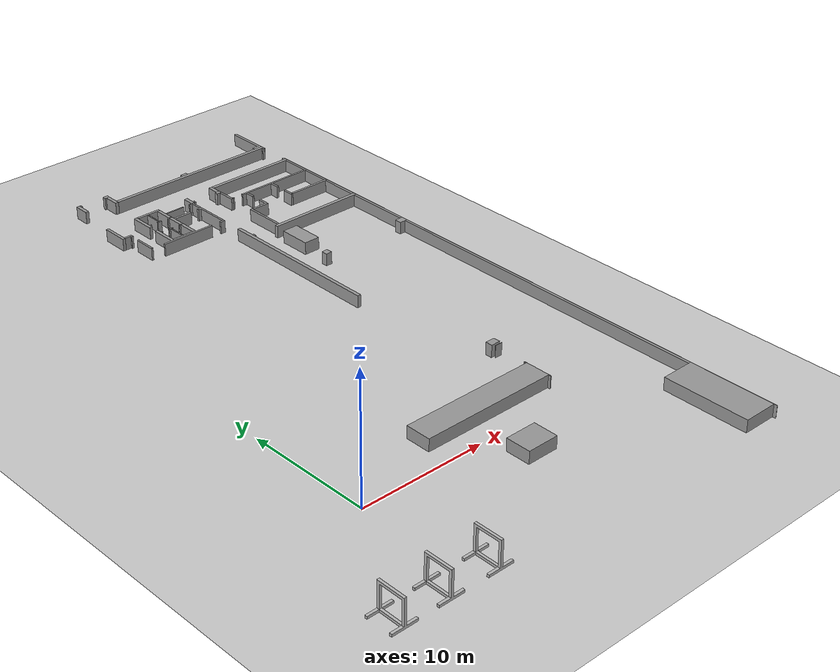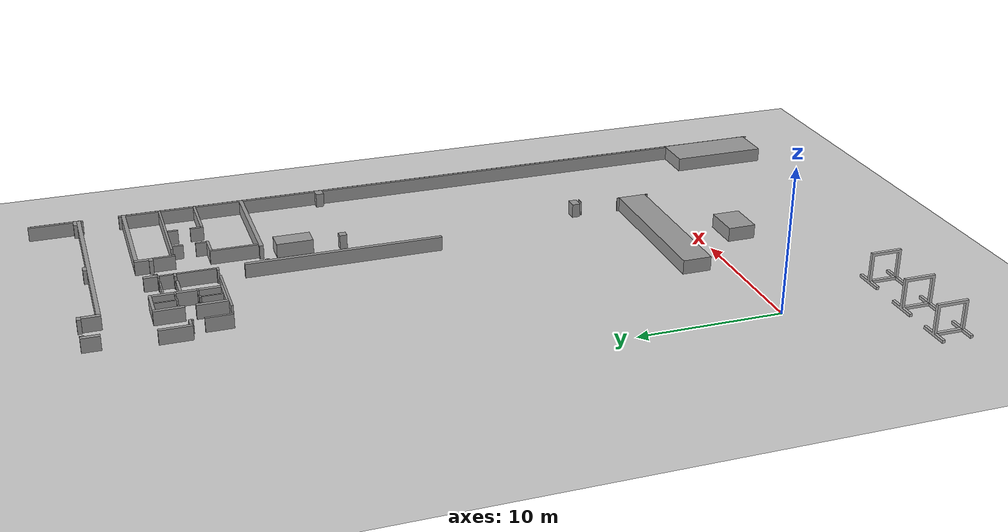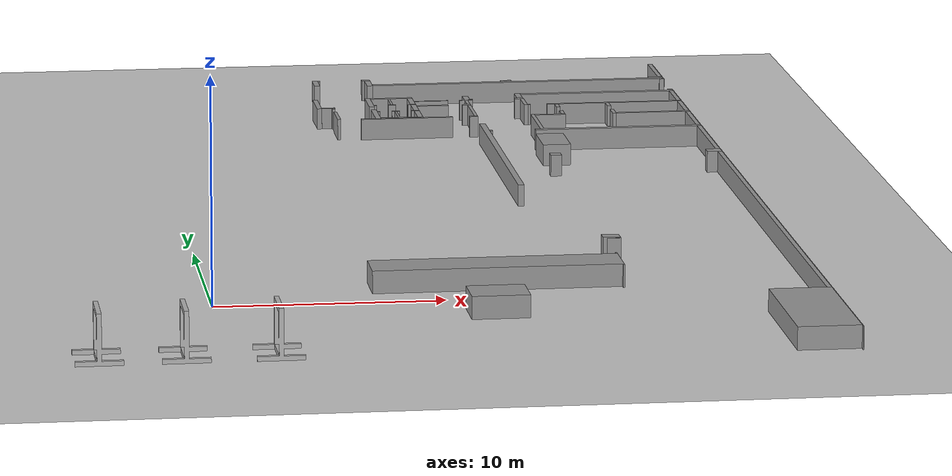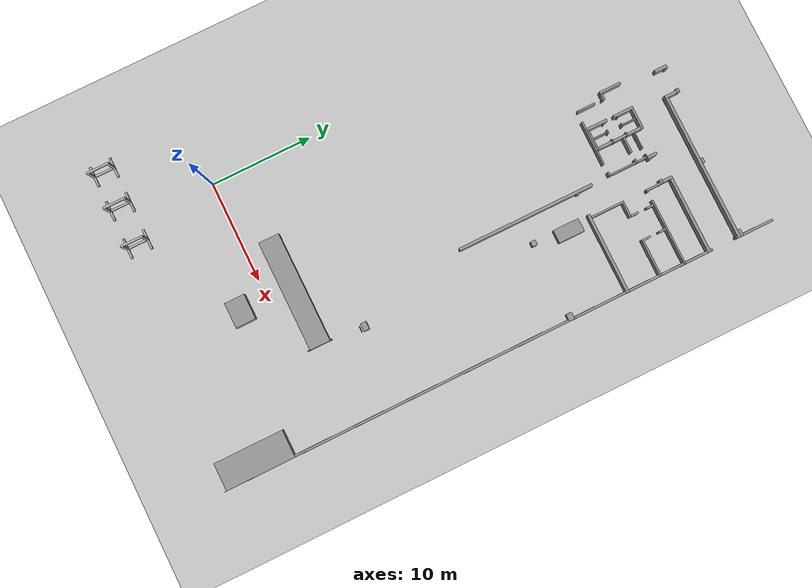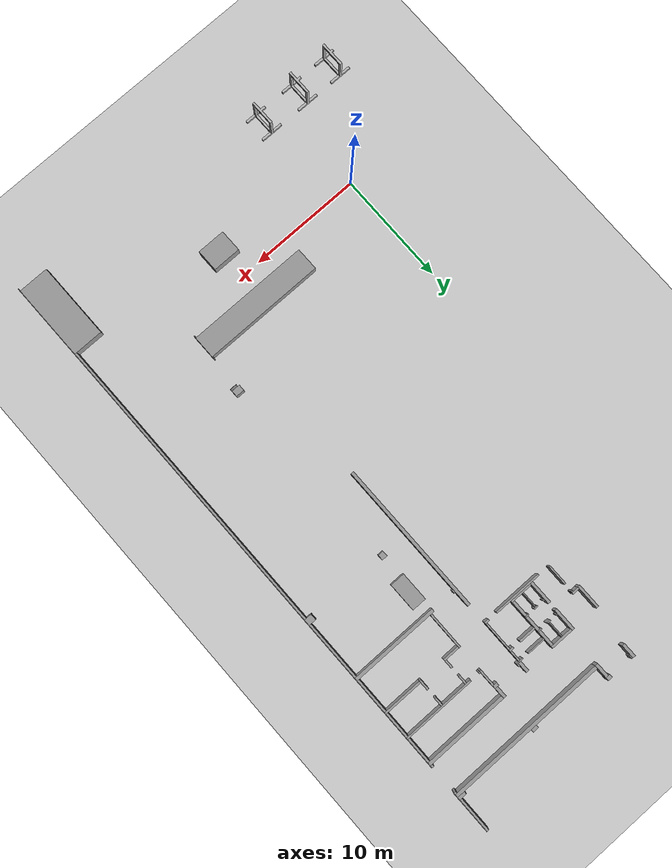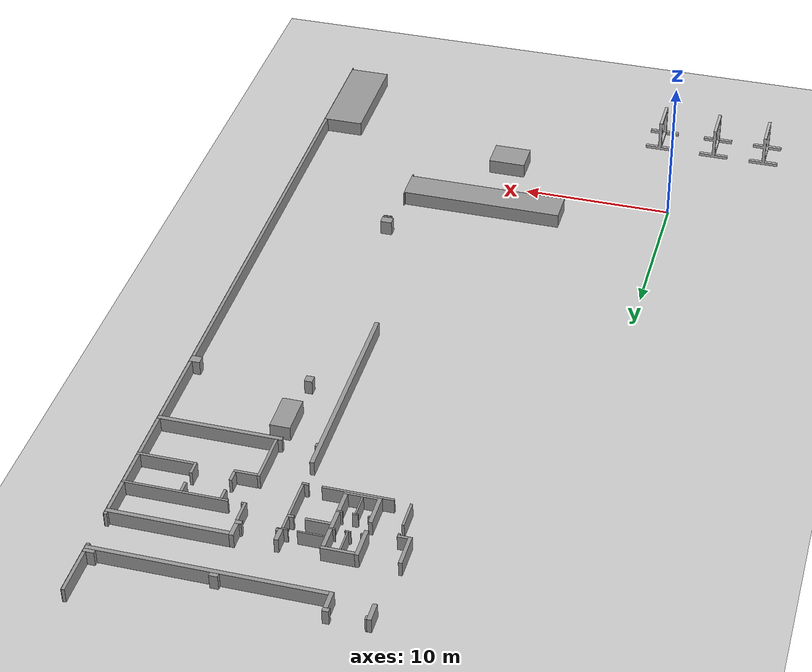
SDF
<sdf version="1.4">
 <world name="default">
  <model name="ground_plane">
   <static>1</static>
   <link name="link">
    <collision name="collision">
     <geometry><plane><normal>0 0 1</normal><size>100 100</size></plane></geometry>
     <surface><friction><ode><mu>100</mu><mu2>50</mu2></ode></friction></surface>
    </collision>
    <visual name="visual">
     <cast_shadows>0</cast_shadows>
     <geometry><plane><normal>0 0 1</normal><size>100 100</size></plane></geometry>
     <material>
      <script><uri>file://media/materials/scripts/gazebo.material</uri><name>Gazebo/Grey</name></script>
     </material>
    </visual>
    <velocity_decay><linear>0</linear><angular>0</angular></velocity_decay>
   </link>
  </model>
  <model name="walls">
   <static>1</static>
   <link name="Wall_78">
    <collision name="Wall_78_Collision">
     <geometry><box><size>2.01702 10.9021 1</size></box></geometry>
     <pose>25.3149 -19.4426 0.5 0 -0 0</pose>
    </collision>
    <visual name="Wall_78_Visual">
     <geometry><box><size>2.01702 10.9021 1</size></box></geometry>
     <material>
      <script><uri>file://media/materials/scripts/gazebo.material</uri><name>Gazebo/Grey</name></script>
     </material>
     <pose>25.3149 -19.4426 0.5 0 -0 0</pose>
    </visual>
    <velocity_decay><linear>0</linear><angular>0</angular></velocity_decay>
   </link>
   <link name="Wall_79">
    <collision name="Wall_79_Collision">
     <geometry><box><size>2.14468 0.22979 1</size></box></geometry>
     <pose>59.7447 -15.2808 0.5 0 -0 0</pose>
    </collision>
    <visual name="Wall_79_Visual">
     <geometry><box><size>2.14468 0.22979 1</size></box></geometry>
     <material>
      <script><uri>file://media/materials/scripts/gazebo.material</uri><name>Gazebo/Grey</name></script>
     </material>
     <pose>59.7447 -15.2808 0.5 0 -0 0</pose>
    </visual>
    <velocity_decay><linear>0</linear><angular>0</angular></velocity_decay>
   </link>
   <link name="Wall_80">
    <collision name="Wall_80_Collision">
     <geometry><box><size>0.17872 0.6383 1</size></box></geometry>
     <pose>58.7617 -15.7149 0.5 0 -0 0</pose>
    </collision>
    <visual name="Wall_80_Visual">
     <geometry><box><size>0.17872 0.6383 1</size></box></geometry>
     <material>
      <script><uri>file://media/materials/scripts/gazebo.material</uri><name>Gazebo/Grey</name></script>
     </material>
     <pose>58.7617 -15.7149 0.5 0 -0 0</pose>
    </visual>
    <velocity_decay><linear>0</linear><angular>0</angular></velocity_decay>
   </link>
   <link name="Wall_81">
    <collision name="Wall_81_Collision">
     <geometry><box><size>1.22553 0.28085 1</size></box></geometry>
     <pose>64.8 -15.7404 0.5 0 -0 0</pose>
    </collision>
    <visual name="Wall_81_Visual">
     <geometry><box><size>1.22553 0.28085 1</size></box></geometry>
     <material>
      <script><uri>file://media/materials/scripts/gazebo.material</uri><name>Gazebo/Grey</name></script>
     </material>
     <pose>64.8 -15.7404 0.5 0 -0 0</pose>
    </visual>
    <velocity_decay><linear>0</linear><angular>0</angular></velocity_decay>
   </link>
   <link name="Wall_82">
    <collision name="Wall_82_Collision">
     <geometry><box><size>1.81277 0.15319 1</size></box></geometry>
     <pose>56.9489 -15.9574 0.5 0 -0 0</pose>
    </collision>
    <visual name="Wall_82_Visual">
     <geometry><box><size>1.81277 0.15319 1</size></box></geometry>
     <material>
      <script><uri>file://media/materials/scripts/gazebo.material</uri><name>Gazebo/Grey</name></script>
     </material>
     <pose>56.9489 -15.9574 0.5 0 -0 0</pose>
    </visual>
    <velocity_decay><linear>0</linear><angular>0</angular></velocity_decay>
   </link>
   <link name="Wall_83">
    <collision name="Wall_83_Collision">
     <geometry><box><size>0.12766 0.15319 1</size></box></geometry>
     <pose>58.6085 -15.9574 0.5 0 -0 0</pose>
    </collision>
    <visual name="Wall_83_Visual">
     <geometry><box><size>0.12766 0.15319 1</size></box></geometry>
     <material>
      <script><uri>file://media/materials/scripts/gazebo.material</uri><name>Gazebo/Grey</name></script>
     </material>
     <pose>58.6085 -15.9574 0.5 0 -0 0</pose>
    </visual>
    <velocity_decay><linear>0</linear><angular>0</angular></velocity_decay>
   </link>
   <link name="Wall_84">
    <collision name="Wall_84_Collision">
     <geometry><box><size>0.28085 0.10213 1</size></box></geometry>
     <pose>65.2723 -15.9319 0.5 0 -0 0</pose>
    </collision>
    <visual name="Wall_84_Visual">
     <geometry><box><size>0.28085 0.10213 1</size></box></geometry>
     <material>
      <script><uri>file://media/materials/scripts/gazebo.material</uri><name>Gazebo/Grey</name></script>
     </material>
     <pose>65.2723 -15.9319 0.5 0 -0 0</pose>
    </visual>
    <velocity_decay><linear>0</linear><angular>0</angular></velocity_decay>
   </link>
   <link name="Wall_85">
    <collision name="Wall_85_Collision">
     <geometry><box><size>0.15319 4.41702 1</size></box></geometry>
     <pose>55.966 -19.2128 0.5 0 -0 0</pose>
    </collision>
    <visual name="Wall_85_Visual">
     <geometry><box><size>0.15319 4.41702 1</size></box></geometry>
     <material>
      <script><uri>file://media/materials/scripts/gazebo.material</uri><name>Gazebo/Grey</name></script>
     </material>
     <pose>55.966 -19.2128 0.5 0 -0 0</pose>
    </visual>
    <velocity_decay><linear>0</linear><angular>0</angular></velocity_decay>
   </link>
   <link name="Wall_86">
    <collision name="Wall_86_Collision">
     <geometry><box><size>1.96596 2.50213 1</size></box></geometry>
     <pose>20.1319 -18.8681 0.5 0 -0 0</pose>
    </collision>
    <visual name="Wall_86_Visual">
     <geometry><box><size>1.96596 2.50213 1</size></box></geometry>
     <material>
      <script><uri>file://media/materials/scripts/gazebo.material</uri><name>Gazebo/Grey</name></script>
     </material>
     <pose>20.1319 -18.8681 0.5 0 -0 0</pose>
    </visual>
    <velocity_decay><linear>0</linear><angular>0</angular></velocity_decay>
   </link>
   <link name="Wall_87">
    <collision name="Wall_87_Collision">
     <geometry><box><size>2.06809 0.25532 1</size></box></geometry>
     <pose>57.0766 -17.8468 0.5 0 -0 0</pose>
    </collision>
    <visual name="Wall_87_Visual">
     <geometry><box><size>2.06809 0.25532 1</size></box></geometry>
     <material>
      <script><uri>file://media/materials/scripts/gazebo.material</uri><name>Gazebo/Grey</name></script>
     </material>
     <pose>57.0766 -17.8468 0.5 0 -0 0</pose>
    </visual>
    <velocity_decay><linear>0</linear><angular>0</angular></velocity_decay>
   </link>
   <link name="Wall_88">
    <collision name="Wall_88_Collision">
     <geometry><box><size>2.01702 0.25532 1</size></box></geometry>
     <pose>59.8085 -17.8468 0.5 0 -0 0</pose>
    </collision>
    <visual name="Wall_88_Visual">
     <geometry><box><size>2.01702 0.25532 1</size></box></geometry>
     <material>
      <script><uri>file://media/materials/scripts/gazebo.material</uri><name>Gazebo/Grey</name></script>
     </material>
     <pose>59.8085 -17.8468 0.5 0 -0 0</pose>
    </visual>
    <velocity_decay><linear>0</linear><angular>0</angular></velocity_decay>
   </link>
   <link name="Wall_89">
    <collision name="Wall_89_Collision">
     <geometry><box><size>0.15319 2.04255 1</size></box></geometry>
     <pose>56.1191 -18.9957 0.5 0 -0 0</pose>
    </collision>
    <visual name="Wall_89_Visual">
     <geometry><box><size>0.15319 2.04255 1</size></box></geometry>
     <material>
      <script><uri>file://media/materials/scripts/gazebo.material</uri><name>Gazebo/Grey</name></script>
     </material>
     <pose>56.1191 -18.9957 0.5 0 -0 0</pose>
    </visual>
    <velocity_decay><linear>0</linear><angular>0</angular></velocity_decay>
   </link>
   <link name="Wall_90">
    <collision name="Wall_90_Collision">
     <geometry><box><size>0.10213 0.12766 1</size></box></geometry>
     <pose>57.6766 -18.0383 0.5 0 -0 0</pose>
    </collision>
    <visual name="Wall_90_Visual">
     <geometry><box><size>0.10213 0.12766 1</size></box></geometry>
     <material>
      <script><uri>file://media/materials/scripts/gazebo.material</uri><name>Gazebo/Grey</name></script>
     </material>
     <pose>57.6766 -18.0383 0.5 0 -0 0</pose>
    </visual>
    <velocity_decay><linear>0</linear><angular>0</angular></velocity_decay>
   </link>
   <link name="Wall_91">
    <collision name="Wall_91_Collision">
     <geometry><box><size>0.10213 0.12766 1</size></box></geometry>
     <pose>59.1319 -18.0383 0.5 0 -0 0</pose>
    </collision>
    <visual name="Wall_91_Visual">
     <geometry><box><size>0.10213 0.12766 1</size></box></geometry>
     <material>
      <script><uri>file://media/materials/scripts/gazebo.material</uri><name>Gazebo/Grey</name></script>
     </material>
     <pose>59.1319 -18.0383 0.5 0 -0 0</pose>
    </visual>
    <velocity_decay><linear>0</linear><angular>0</angular></velocity_decay>
   </link>
   <link name="Wall_92">
    <collision name="Wall_92_Collision">
     <geometry><box><size>0.20426 2.04255 1</size></box></geometry>
     <pose>60.7149 -18.9957 0.5 0 -0 0</pose>
    </collision>
    <visual name="Wall_92_Visual">
     <geometry><box><size>0.20426 2.04255 1</size></box></geometry>
     <material>
      <script><uri>file://media/materials/scripts/gazebo.material</uri><name>Gazebo/Grey</name></script>
     </material>
     <pose>60.7149 -18.9957 0.5 0 -0 0</pose>
    </visual>
    <velocity_decay><linear>0</linear><angular>0</angular></velocity_decay>
   </link>
   <link name="Wall_93">
    <collision name="Wall_93_Collision">
     <geometry><box><size>0.28085 0.40851 1</size></box></geometry>
     <pose>65.2723 -18.2553 0.5 0 -0 0</pose>
    </collision>
    <visual name="Wall_93_Visual">
     <geometry><box><size>0.28085 0.40851 1</size></box></geometry>
     <material>
      <script><uri>file://media/materials/scripts/gazebo.material</uri><name>Gazebo/Grey</name></script>
     </material>
     <pose>65.2723 -18.2553 0.5 0 -0 0</pose>
    </visual>
    <velocity_decay><linear>0</linear><angular>0</angular></velocity_decay>
   </link>
   <link name="Wall_94">
    <collision name="Wall_94_Collision">
     <geometry><box><size>1.22553 0.28085 1</size></box></geometry>
     <pose>64.5191 -18.3192 0.5 0 -0 0</pose>
    </collision>
    <visual name="Wall_94_Visual">
     <geometry><box><size>1.22553 0.28085 1</size></box></geometry>
     <material>
      <script><uri>file://media/materials/scripts/gazebo.material</uri><name>Gazebo/Grey</name></script>
     </material>
     <pose>64.5191 -18.3192 0.5 0 -0 0</pose>
    </visual>
    <velocity_decay><linear>0</linear><angular>0</angular></velocity_decay>
   </link>
   <link name="Wall_95">
    <collision name="Wall_95_Collision">
     <geometry><box><size>0.28085 14.4766 1</size></box></geometry>
     <pose>64.0468 -25.6979 0.5 0 -0 0</pose>
    </collision>
    <visual name="Wall_95_Visual">
     <geometry><box><size>0.28085 14.4766 1</size></box></geometry>
     <material>
      <script><uri>file://media/materials/scripts/gazebo.material</uri><name>Gazebo/Grey</name></script>
     </material>
     <pose>64.0468 -25.6979 0.5 0 -0 0</pose>
    </visual>
    <velocity_decay><linear>0</linear><angular>0</angular></velocity_decay>
   </link>
   <link name="Wall_96">
    <collision name="Wall_96_Collision">
     <geometry><box><size>0.10213 0.35745 1</size></box></geometry>
     <pose>57.6766 -18.8681 0.5 0 -0 0</pose>
    </collision>
    <visual name="Wall_96_Visual">
     <geometry><box><size>0.10213 0.35745 1</size></box></geometry>
     <material>
      <script><uri>file://media/materials/scripts/gazebo.material</uri><name>Gazebo/Grey</name></script>
     </material>
     <pose>57.6766 -18.8681 0.5 0 -0 0</pose>
    </visual>
    <velocity_decay><linear>0</linear><angular>0</angular></velocity_decay>
   </link>
   <link name="Wall_97">
    <collision name="Wall_97_Collision">
     <geometry><box><size>0.10213 0.35745 1</size></box></geometry>
     <pose>59.1319 -18.8681 0.5 0 -0 0</pose>
    </collision>
    <visual name="Wall_97_Visual">
     <geometry><box><size>0.10213 0.35745 1</size></box></geometry>
     <material>
      <script><uri>file://media/materials/scripts/gazebo.material</uri><name>Gazebo/Grey</name></script>
     </material>
     <pose>59.1319 -18.8681 0.5 0 -0 0</pose>
    </visual>
    <velocity_decay><linear>0</linear><angular>0</angular></velocity_decay>
   </link>
   <link name="Wall_98">
    <collision name="Wall_98_Collision">
     <geometry><box><size>1.42979 0.10213 1</size></box></geometry>
     <pose>56.9106 -18.8681 0.5 0 -0 0</pose>
    </collision>
    <visual name="Wall_98_Visual">
     <geometry><box><size>1.42979 0.10213 1</size></box></geometry>
     <material>
      <script><uri>file://media/materials/scripts/gazebo.material</uri><name>Gazebo/Grey</name></script>
     </material>
     <pose>56.9106 -18.8681 0.5 0 -0 0</pose>
    </visual>
    <velocity_decay><linear>0</linear><angular>0</angular></velocity_decay>
   </link>
   <link name="Wall_99">
    <collision name="Wall_99_Collision">
     <geometry><box><size>1.42979 0.10213 1</size></box></geometry>
     <pose>59.8979 -18.8681 0.5 0 -0 0</pose>
    </collision>
    <visual name="Wall_99_Visual">
     <geometry><box><size>1.42979 0.10213 1</size></box></geometry>
     <material>
      <script><uri>file://media/materials/scripts/gazebo.material</uri><name>Gazebo/Grey</name></script>
     </material>
     <pose>59.8979 -18.8681 0.5 0 -0 0</pose>
    </visual>
    <velocity_decay><linear>0</linear><angular>0</angular></velocity_decay>
   </link>
   <link name="Wall_100">
    <collision name="Wall_100_Collision">
     <geometry><box><size>0.10213 0.38298 1</size></box></geometry>
     <pose>57.6766 -19.8255 0.5 0 -0 0</pose>
    </collision>
    <visual name="Wall_100_Visual">
     <geometry><box><size>0.10213 0.38298 1</size></box></geometry>
     <material>
      <script><uri>file://media/materials/scripts/gazebo.material</uri><name>Gazebo/Grey</name></script>
     </material>
     <pose>57.6766 -19.8255 0.5 0 -0 0</pose>
    </visual>
    <velocity_decay><linear>0</linear><angular>0</angular></velocity_decay>
   </link>
   <link name="Wall_101">
    <collision name="Wall_101_Collision">
     <geometry><box><size>0.10213 0.38298 1</size></box></geometry>
     <pose>59.1319 -19.8255 0.5 0 -0 0</pose>
    </collision>
    <visual name="Wall_101_Visual">
     <geometry><box><size>0.10213 0.38298 1</size></box></geometry>
     <material>
      <script><uri>file://media/materials/scripts/gazebo.material</uri><name>Gazebo/Grey</name></script>
     </material>
     <pose>59.1319 -19.8255 0.5 0 -0 0</pose>
    </visual>
    <velocity_decay><linear>0</linear><angular>0</angular></velocity_decay>
   </link>
   <link name="Wall_102">
    <collision name="Wall_102_Collision">
     <geometry><box><size>1.42979 0.25532 1</size></box></geometry>
     <pose>56.9106 -19.8894 0.5 0 -0 0</pose>
    </collision>
    <visual name="Wall_102_Visual">
     <geometry><box><size>1.42979 0.25532 1</size></box></geometry>
     <material>
      <script><uri>file://media/materials/scripts/gazebo.material</uri><name>Gazebo/Grey</name></script>
     </material>
     <pose>56.9106 -19.8894 0.5 0 -0 0</pose>
    </visual>
    <velocity_decay><linear>0</linear><angular>0</angular></velocity_decay>
   </link>
   <link name="Wall_103">
    <collision name="Wall_103_Collision">
     <geometry><box><size>1.35319 0.25532 1</size></box></geometry>
     <pose>58.4043 -19.8894 0.5 0 -0 0</pose>
    </collision>
    <visual name="Wall_103_Visual">
     <geometry><box><size>1.35319 0.25532 1</size></box></geometry>
     <material>
      <script><uri>file://media/materials/scripts/gazebo.material</uri><name>Gazebo/Grey</name></script>
     </material>
     <pose>58.4043 -19.8894 0.5 0 -0 0</pose>
    </visual>
    <velocity_decay><linear>0</linear><angular>0</angular></velocity_decay>
   </link>
   <link name="Wall_104">
    <collision name="Wall_104_Collision">
     <geometry><box><size>1.42979 0.25532 1</size></box></geometry>
     <pose>59.8979 -19.8894 0.5 0 -0 0</pose>
    </collision>
    <visual name="Wall_104_Visual">
     <geometry><box><size>1.42979 0.25532 1</size></box></geometry>
     <material>
      <script><uri>file://media/materials/scripts/gazebo.material</uri><name>Gazebo/Grey</name></script>
     </material>
     <pose>59.8979 -19.8894 0.5 0 -0 0</pose>
    </visual>
    <velocity_decay><linear>0</linear><angular>0</angular></velocity_decay>
   </link>
   <link name="Wall_105">
    <collision name="Wall_105_Collision">
     <geometry><box><size>0.17872 1.53191 1</size></box></geometry>
     <pose>58.7617 -20.783 0.5 0 -0 0</pose>
    </collision>
    <visual name="Wall_105_Visual">
     <geometry><box><size>0.17872 1.53191 1</size></box></geometry>
     <material>
      <script><uri>file://media/materials/scripts/gazebo.material</uri><name>Gazebo/Grey</name></script>
     </material>
     <pose>58.7617 -20.783 0.5 0 -0 0</pose>
    </visual>
    <velocity_decay><linear>0</linear><angular>0</angular></velocity_decay>
   </link>
   <link name="Wall_106">
    <collision name="Wall_106_Collision">
     <geometry><box><size>0.10213 1.65957 1</size></box></geometry>
     <pose>59.8468 -20.8468 0.5 0 -0 0</pose>
    </collision>
    <visual name="Wall_106_Visual">
     <geometry><box><size>0.10213 1.65957 1</size></box></geometry>
     <material>
      <script><uri>file://media/materials/scripts/gazebo.material</uri><name>Gazebo/Grey</name></script>
     </material>
     <pose>59.8468 -20.8468 0.5 0 -0 0</pose>
    </visual>
    <velocity_decay><linear>0</linear><angular>0</angular></velocity_decay>
   </link>
   <link name="Wall_107">
    <collision name="Wall_107_Collision">
     <geometry><box><size>0.15319 0.40851 1</size></box></geometry>
     <pose>55.966 -22.4426 0.5 0 -0 0</pose>
    </collision>
    <visual name="Wall_107_Visual">
     <geometry><box><size>0.15319 0.40851 1</size></box></geometry>
     <material>
      <script><uri>file://media/materials/scripts/gazebo.material</uri><name>Gazebo/Grey</name></script>
     </material>
     <pose>55.966 -22.4426 0.5 0 -0 0</pose>
    </visual>
    <velocity_decay><linear>0</linear><angular>0</angular></velocity_decay>
   </link>
   <link name="Wall_108">
    <collision name="Wall_108_Collision">
     <geometry><box><size>0.17872 0.40851 1</size></box></geometry>
     <pose>58.7617 -22.4426 0.5 0 -0 0</pose>
    </collision>
    <visual name="Wall_108_Visual">
     <geometry><box><size>0.17872 0.40851 1</size></box></geometry>
     <material>
      <script><uri>file://media/materials/scripts/gazebo.material</uri><name>Gazebo/Grey</name></script>
     </material>
     <pose>58.7617 -22.4426 0.5 0 -0 0</pose>
    </visual>
    <velocity_decay><linear>0</linear><angular>0</angular></velocity_decay>
   </link>
   <link name="Wall_109">
    <collision name="Wall_109_Collision">
     <geometry><box><size>0.10213 0.40851 1</size></box></geometry>
     <pose>59.8468 -22.4426 0.5 0 -0 0</pose>
    </collision>
    <visual name="Wall_109_Visual">
     <geometry><box><size>0.10213 0.40851 1</size></box></geometry>
     <material>
      <script><uri>file://media/materials/scripts/gazebo.material</uri><name>Gazebo/Grey</name></script>
     </material>
     <pose>59.8468 -22.4426 0.5 0 -0 0</pose>
    </visual>
    <velocity_decay><linear>0</linear><angular>0</angular></velocity_decay>
   </link>
   <link name="Wall_110">
    <collision name="Wall_110_Collision">
     <geometry><box><size>13.634 0.28085 1</size></box></geometry>
     <pose>47.3362 -22.634 0.5 0 -0 0</pose>
    </collision>
    <visual name="Wall_110_Visual">
     <geometry><box><size>13.634 0.28085 1</size></box></geometry>
     <material>
      <script><uri>file://media/materials/scripts/gazebo.material</uri><name>Gazebo/Grey</name></script>
     </material>
     <pose>47.3362 -22.634 0.5 0 -0 0</pose>
    </visual>
    <velocity_decay><linear>0</linear><angular>0</angular></velocity_decay>
   </link>
   <link name="Wall_111">
    <collision name="Wall_111_Collision">
     <geometry><box><size>2.62979 0.15319 1</size></box></geometry>
     <pose>57.3575 -22.5702 0.5 0 -0 0</pose>
    </collision>
    <visual name="Wall_111_Visual">
     <geometry><box><size>2.62979 0.15319 1</size></box></geometry>
     <material>
      <script><uri>file://media/materials/scripts/gazebo.material</uri><name>Gazebo/Grey</name></script>
     </material>
     <pose>57.3575 -22.5702 0.5 0 -0 0</pose>
    </visual>
    <velocity_decay><linear>0</linear><angular>0</angular></velocity_decay>
   </link>
   <link name="Wall_112">
    <collision name="Wall_112_Collision">
     <geometry><box><size>0.94468 0.15319 1</size></box></geometry>
     <pose>59.3234 -22.5702 0.5 0 -0 0</pose>
    </collision>
    <visual name="Wall_112_Visual">
     <geometry><box><size>0.94468 0.15319 1</size></box></geometry>
     <material>
      <script><uri>file://media/materials/scripts/gazebo.material</uri><name>Gazebo/Grey</name></script>
     </material>
     <pose>59.3234 -22.5702 0.5 0 -0 0</pose>
    </visual>
    <velocity_decay><linear>0</linear><angular>0</angular></velocity_decay>
   </link>
   <link name="Wall_113">
    <collision name="Wall_113_Collision">
     <geometry><box><size>0.91915 0.28085 1</size></box></geometry>
     <pose>60.3575 -22.634 0.5 0 -0 0</pose>
    </collision>
    <visual name="Wall_113_Visual">
     <geometry><box><size>0.91915 0.28085 1</size></box></geometry>
     <material>
      <script><uri>file://media/materials/scripts/gazebo.material</uri><name>Gazebo/Grey</name></script>
     </material>
     <pose>60.3575 -22.634 0.5 0 -0 0</pose>
    </visual>
    <velocity_decay><linear>0</linear><angular>0</angular></velocity_decay>
   </link>
   <link name="Wall_114">
    <collision name="Wall_114_Collision">
     <geometry><box><size>0.05106 0.25532 1</size></box></geometry>
     <pose>59.8723 -22.7745 0.5 0 -0 0</pose>
    </collision>
    <visual name="Wall_114_Visual">
     <geometry><box><size>0.05106 0.25532 1</size></box></geometry>
     <material>
      <script><uri>file://media/materials/scripts/gazebo.material</uri><name>Gazebo/Grey</name></script>
     </material>
     <pose>59.8723 -22.7745 0.5 0 -0 0</pose>
    </visual>
    <velocity_decay><linear>0</linear><angular>0</angular></velocity_decay>
   </link>
   <link name="Wall_115">
    <collision name="Wall_115_Collision">
     <geometry><box><size>0.28085 0.12766 1</size></box></geometry>
     <pose>52.583 -22.8383 0.5 0 -0 0</pose>
    </collision>
    <visual name="Wall_115_Visual">
     <geometry><box><size>0.28085 0.12766 1</size></box></geometry>
     <material>
      <script><uri>file://media/materials/scripts/gazebo.material</uri><name>Gazebo/Grey</name></script>
     </material>
     <pose>52.583 -22.8383 0.5 0 -0 0</pose>
    </visual>
    <velocity_decay><linear>0</linear><angular>0</angular></velocity_decay>
   </link>
   <link name="Wall_116">
    <collision name="Wall_116_Collision">
     <geometry><box><size>0.22979 0.12766 1</size></box></geometry>
     <pose>60.0128 -22.8383 0.5 0 -0 0</pose>
    </collision>
    <visual name="Wall_116_Visual">
     <geometry><box><size>0.22979 0.12766 1</size></box></geometry>
     <material>
      <script><uri>file://media/materials/scripts/gazebo.material</uri><name>Gazebo/Grey</name></script>
     </material>
     <pose>60.0128 -22.8383 0.5 0 -0 0</pose>
    </visual>
    <velocity_decay><linear>0</linear><angular>0</angular></velocity_decay>
   </link>
   <link name="Wall_117">
    <collision name="Wall_117_Collision">
     <geometry><box><size>0.5617 0.76596 1</size></box></geometry>
     <pose>29.7191 -25.1234 0.5 0 -0 0</pose>
    </collision>
    <visual name="Wall_117_Visual">
     <geometry><box><size>0.5617 0.76596 1</size></box></geometry>
     <material>
      <script><uri>file://media/materials/scripts/gazebo.material</uri><name>Gazebo/Grey</name></script>
     </material>
     <pose>29.7191 -25.1234 0.5 0 -0 0</pose>
    </visual>
    <velocity_decay><linear>0</linear><angular>0</angular></velocity_decay>
   </link>
   <link name="Wall_118">
    <collision name="Wall_118_Collision">
     <geometry><box><size>0.20426 0.0766 1</size></box></geometry>
     <pose>24.2043 -24.8553 0.5 0 -0 0</pose>
    </collision>
    <visual name="Wall_118_Visual">
     <geometry><box><size>0.20426 0.0766 1</size></box></geometry>
     <material>
      <script><uri>file://media/materials/scripts/gazebo.material</uri><name>Gazebo/Grey</name></script>
     </material>
     <pose>24.2043 -24.8553 0.5 0 -0 0</pose>
    </visual>
    <velocity_decay><linear>0</linear><angular>0</angular></velocity_decay>
   </link>
   <link name="Wall_119">
    <collision name="Wall_119_Collision">
     <geometry><box><size>0.17872 0.0766 1</size></box></geometry>
     <pose>26.4128 -24.8553 0.5 0 -0 0</pose>
    </collision>
    <visual name="Wall_119_Visual">
     <geometry><box><size>0.17872 0.0766 1</size></box></geometry>
     <material>
      <script><uri>file://media/materials/scripts/gazebo.material</uri><name>Gazebo/Grey</name></script>
     </material>
     <pose>26.4128 -24.8553 0.5 0 -0 0</pose>
    </visual>
    <velocity_decay><linear>0</linear><angular>0</angular></velocity_decay>
   </link>
   <link name="Wall_120">
    <collision name="Wall_120_Collision">
     <geometry><box><size>2.55319 1.30213 1</size></box></geometry>
     <pose>50.2979 -25.4936 0.5 0 -0 0</pose>
    </collision>
    <visual name="Wall_120_Visual">
     <geometry><box><size>2.55319 1.30213 1</size></box></geometry>
     <material>
      <script><uri>file://media/materials/scripts/gazebo.material</uri><name>Gazebo/Grey</name></script>
     </material>
     <pose>50.2979 -25.4936 0.5 0 -0 0</pose>
    </visual>
    <velocity_decay><linear>0</linear><angular>0</angular></velocity_decay>
   </link>
   <link name="Wall_121">
    <collision name="Wall_121_Collision">
     <geometry><box><size>0.25532 0.53617 1</size></box></geometry>
     <pose>64.3149 -25.1106 0.5 0 -0 0</pose>
    </collision>
    <visual name="Wall_121_Visual">
     <geometry><box><size>0.25532 0.53617 1</size></box></geometry>
     <material>
      <script><uri>file://media/materials/scripts/gazebo.material</uri><name>Gazebo/Grey</name></script>
     </material>
     <pose>64.3149 -25.1106 0.5 0 -0 0</pose>
    </visual>
    <velocity_decay><linear>0</linear><angular>0</angular></velocity_decay>
   </link>
   <link name="Wall_122">
    <collision name="Wall_122_Collision">
     <geometry><box><size>0.51064 0.51064 1</size></box></geometry>
     <pose>46.9021 -25.1234 0.5 0 -0 0</pose>
    </collision>
    <visual name="Wall_122_Visual">
     <geometry><box><size>0.51064 0.51064 1</size></box></geometry>
     <material>
      <script><uri>file://media/materials/scripts/gazebo.material</uri><name>Gazebo/Grey</name></script>
     </material>
     <pose>46.9021 -25.1234 0.5 0 -0 0</pose>
    </visual>
    <velocity_decay><linear>0</linear><angular>0</angular></velocity_decay>
   </link>
   <link name="Wall_123">
    <collision name="Wall_123_Collision">
     <geometry><box><size>0.02553 0.61277 1</size></box></geometry>
     <pose>29.2468 -25.2 0.5 0 -0 0</pose>
    </collision>
    <visual name="Wall_123_Visual">
     <geometry><box><size>0.02553 0.61277 1</size></box></geometry>
     <material>
      <script><uri>file://media/materials/scripts/gazebo.material</uri><name>Gazebo/Grey</name></script>
     </material>
     <pose>29.2468 -25.2 0.5 0 -0 0</pose>
    </visual>
    <velocity_decay><linear>0</linear><angular>0</angular></velocity_decay>
   </link>
   <link name="Wall_124">
    <collision name="Wall_124_Collision">
     <geometry><box><size>0.28085 7.96596 1</size></box></geometry>
     <pose>52.583 -28.9532 0.5 0 -0 0</pose>
    </collision>
    <visual name="Wall_124_Visual">
     <geometry><box><size>0.28085 7.96596 1</size></box></geometry>
     <material>
      <script><uri>file://media/materials/scripts/gazebo.material</uri><name>Gazebo/Grey</name></script>
     </material>
     <pose>52.583 -28.9532 0.5 0 -0 0</pose>
    </visual>
    <velocity_decay><linear>0</linear><angular>0</angular></velocity_decay>
   </link>
   <link name="Wall_125">
    <collision name="Wall_125_Collision">
     <geometry><box><size>0.28085 0.40851 1</size></box></geometry>
     <pose>59.9872 -25.1745 0.5 0 -0 0</pose>
    </collision>
    <visual name="Wall_125_Visual">
     <geometry><box><size>0.28085 0.40851 1</size></box></geometry>
     <material>
      <script><uri>file://media/materials/scripts/gazebo.material</uri><name>Gazebo/Grey</name></script>
     </material>
     <pose>59.9872 -25.1745 0.5 0 -0 0</pose>
    </visual>
    <velocity_decay><linear>0</linear><angular>0</angular></velocity_decay>
   </link>
   <link name="Wall_126">
    <collision name="Wall_126_Collision">
     <geometry><box><size>0.97021 0.28085 1</size></box></geometry>
     <pose>60.6128 -25.2383 0.5 0 -0 0</pose>
    </collision>
    <visual name="Wall_126_Visual">
     <geometry><box><size>0.97021 0.28085 1</size></box></geometry>
     <material>
      <script><uri>file://media/materials/scripts/gazebo.material</uri><name>Gazebo/Grey</name></script>
     </material>
     <pose>60.6128 -25.2383 0.5 0 -0 0</pose>
    </visual>
    <velocity_decay><linear>0</linear><angular>0</angular></velocity_decay>
   </link>
   <link name="Wall_127">
    <collision name="Wall_127_Collision">
     <geometry><box><size>3.31915 0.17872 1</size></box></geometry>
     <pose>54.383 -25.3149 0.5 0 -0 0</pose>
    </collision>
    <visual name="Wall_127_Visual">
     <geometry><box><size>3.31915 0.17872 1</size></box></geometry>
     <material>
      <script><uri>file://media/materials/scripts/gazebo.material</uri><name>Gazebo/Grey</name></script>
     </material>
     <pose>54.383 -25.3149 0.5 0 -0 0</pose>
    </visual>
    <velocity_decay><linear>0</linear><angular>0</angular></velocity_decay>
   </link>
   <link name="Wall_128">
    <collision name="Wall_128_Collision">
     <geometry><box><size>1.48085 0.17872 1</size></box></geometry>
     <pose>59.1064 -25.3149 0.5 0 -0 0</pose>
    </collision>
    <visual name="Wall_128_Visual">
     <geometry><box><size>1.48085 0.17872 1</size></box></geometry>
     <material>
      <script><uri>file://media/materials/scripts/gazebo.material</uri><name>Gazebo/Grey</name></script>
     </material>
     <pose>59.1064 -25.3149 0.5 0 -0 0</pose>
    </visual>
    <velocity_decay><linear>0</linear><angular>0</angular></velocity_decay>
   </link>
   <link name="Wall_129">
    <collision name="Wall_129_Collision">
     <geometry><box><size>0.05106 0.02553 1</size></box></geometry>
     <pose>59.8723 -25.3915 0.5 0 -0 0</pose>
    </collision>
    <visual name="Wall_129_Visual">
     <geometry><box><size>0.05106 0.02553 1</size></box></geometry>
     <material>
      <script><uri>file://media/materials/scripts/gazebo.material</uri><name>Gazebo/Grey</name></script>
     </material>
     <pose>59.8723 -25.3915 0.5 0 -0 0</pose>
    </visual>
    <velocity_decay><linear>0</linear><angular>0</angular></velocity_decay>
   </link>
   <link name="Wall_130">
    <collision name="Wall_130_Collision">
     <geometry><box><size>0.28085 7.55745 1</size></box></geometry>
     <pose>60.9575 -29.1575 0.5 0 -0 0</pose>
    </collision>
    <visual name="Wall_130_Visual">
     <geometry><box><size>0.28085 7.55745 1</size></box></geometry>
     <material>
      <script><uri>file://media/materials/scripts/gazebo.material</uri><name>Gazebo/Grey</name></script>
     </material>
     <pose>60.9575 -29.1575 0.5 0 -0 0</pose>
    </visual>
    <velocity_decay><linear>0</linear><angular>0</angular></velocity_decay>
   </link>
   <link name="Wall_131">
    <collision name="Wall_131_Collision">
     <geometry><box><size>0.17872 1.48085 1</size></box></geometry>
     <pose>55.9532 -26.1447 0.5 0 -0 0</pose>
    </collision>
    <visual name="Wall_131_Visual">
     <geometry><box><size>0.17872 1.48085 1</size></box></geometry>
     <material>
      <script><uri>file://media/materials/scripts/gazebo.material</uri><name>Gazebo/Grey</name></script>
     </material>
     <pose>55.9532 -26.1447 0.5 0 -0 0</pose>
    </visual>
    <velocity_decay><linear>0</linear><angular>0</angular></velocity_decay>
   </link>
   <link name="Wall_132">
    <collision name="Wall_132_Collision">
     <geometry><box><size>0.15319 0.12766 1</size></box></geometry>
     <pose>58.4425 -25.4681 0.5 0 -0 0</pose>
    </collision>
    <visual name="Wall_132_Visual">
     <geometry><box><size>0.15319 0.12766 1</size></box></geometry>
     <material>
      <script><uri>file://media/materials/scripts/gazebo.material</uri><name>Gazebo/Grey</name></script>
     </material>
     <pose>58.4425 -25.4681 0.5 0 -0 0</pose>
    </visual>
    <velocity_decay><linear>0</linear><angular>0</angular></velocity_decay>
   </link>
   <link name="Wall_133">
    <collision name="Wall_133_Collision">
     <geometry><box><size>0.15319 6.58723 1</size></box></geometry>
     <pose>58.4425 -29.6425 0.5 0 -0 0</pose>
    </collision>
    <visual name="Wall_133_Visual">
     <geometry><box><size>0.15319 6.58723 1</size></box></geometry>
     <material>
      <script><uri>file://media/materials/scripts/gazebo.material</uri><name>Gazebo/Grey</name></script>
     </material>
     <pose>58.4425 -29.6425 0.5 0 -0 0</pose>
    </visual>
    <velocity_decay><linear>0</linear><angular>0</angular></velocity_decay>
   </link>
   <link name="Wall_134">
    <collision name="Wall_134_Collision">
     <geometry><box><size>0.74043 0.17872 1</size></box></geometry>
     <pose>56.4128 -26.7957 0.5 0 -0 0</pose>
    </collision>
    <visual name="Wall_134_Visual">
     <geometry><box><size>0.74043 0.17872 1</size></box></geometry>
     <material>
      <script><uri>file://media/materials/scripts/gazebo.material</uri><name>Gazebo/Grey</name></script>
     </material>
     <pose>56.4128 -26.7957 0.5 0 -0 0</pose>
    </visual>
    <velocity_decay><linear>0</linear><angular>0</angular></velocity_decay>
   </link>
   <link name="Wall_135">
    <collision name="Wall_135_Collision">
     <geometry><box><size>0.74043 0.17872 1</size></box></geometry>
     <pose>57.9957 -26.7957 0.5 0 -0 0</pose>
    </collision>
    <visual name="Wall_135_Visual">
     <geometry><box><size>0.74043 0.17872 1</size></box></geometry>
     <material>
      <script><uri>file://media/materials/scripts/gazebo.material</uri><name>Gazebo/Grey</name></script>
     </material>
     <pose>57.9957 -26.7957 0.5 0 -0 0</pose>
    </visual>
    <velocity_decay><linear>0</linear><angular>0</angular></velocity_decay>
   </link>
   <link name="Wall_136">
    <collision name="Wall_136_Collision">
     <geometry><box><size>0.91915 0.17872 1</size></box></geometry>
     <pose>56.3234 -29.2723 0.5 0 -0 0</pose>
    </collision>
    <visual name="Wall_136_Visual">
     <geometry><box><size>0.91915 0.17872 1</size></box></geometry>
     <material>
      <script><uri>file://media/materials/scripts/gazebo.material</uri><name>Gazebo/Grey</name></script>
     </material>
     <pose>56.3234 -29.2723 0.5 0 -0 0</pose>
    </visual>
    <velocity_decay><linear>0</linear><angular>0</angular></velocity_decay>
   </link>
   <link name="Wall_137">
    <collision name="Wall_137_Collision">
     <geometry><box><size>0.74043 0.17872 1</size></box></geometry>
     <pose>57.9957 -29.2723 0.5 0 -0 0</pose>
    </collision>
    <visual name="Wall_137_Visual">
     <geometry><box><size>0.74043 0.17872 1</size></box></geometry>
     <material>
      <script><uri>file://media/materials/scripts/gazebo.material</uri><name>Gazebo/Grey</name></script>
     </material>
     <pose>57.9957 -29.2723 0.5 0 -0 0</pose>
    </visual>
    <velocity_decay><linear>0</linear><angular>0</angular></velocity_decay>
   </link>
   <link name="Wall_138">
    <collision name="Wall_138_Collision">
     <geometry><box><size>0.17872 3.57447 1</size></box></geometry>
     <pose>55.9532 -31.1489 0.5 0 -0 0</pose>
    </collision>
    <visual name="Wall_138_Visual">
     <geometry><box><size>0.17872 3.57447 1</size></box></geometry>
     <material>
      <script><uri>file://media/materials/scripts/gazebo.material</uri><name>Gazebo/Grey</name></script>
     </material>
     <pose>55.9532 -31.1489 0.5 0 -0 0</pose>
    </visual>
    <velocity_decay><linear>0</linear><angular>0</angular></velocity_decay>
   </link>
   <link name="Wall_139">
    <collision name="Wall_139_Collision">
     <geometry><box><size>6.81702 2.70638 1</size></box></geometry>
     <pose>15.5617 -31.583 0.5 0 -0 0</pose>
    </collision>
    <visual name="Wall_139_Visual">
     <geometry><box><size>6.81702 2.70638 1</size></box></geometry>
     <material>
      <script><uri>file://media/materials/scripts/gazebo.material</uri><name>Gazebo/Grey</name></script>
     </material>
     <pose>15.5617 -31.583 0.5 0 -0 0</pose>
    </visual>
    <velocity_decay><linear>0</linear><angular>0</angular></velocity_decay>
   </link>
   <link name="Wall_140">
    <collision name="Wall_140_Collision">
     <geometry><box><size>0.5617 0.68936 1</size></box></geometry>
     <pose>46.8766 -32.5915 0.5 0 -0 0</pose>
    </collision>
    <visual name="Wall_140_Visual">
     <geometry><box><size>0.5617 0.68936 1</size></box></geometry>
     <material>
      <script><uri>file://media/materials/scripts/gazebo.material</uri><name>Gazebo/Grey</name></script>
     </material>
     <pose>46.8766 -32.5915 0.5 0 -0 0</pose>
    </visual>
    <velocity_decay><linear>0</linear><angular>0</angular></velocity_decay>
   </link>
   <link name="Wall_141">
    <collision name="Wall_141_Collision">
     <geometry><box><size>0.25532 0.68936 1</size></box></geometry>
     <pose>64.3149 -32.5915 0.5 0 -0 0</pose>
    </collision>
    <visual name="Wall_141_Visual">
     <geometry><box><size>0.25532 0.68936 1</size></box></geometry>
     <material>
      <script><uri>file://media/materials/scripts/gazebo.material</uri><name>Gazebo/Grey</name></script>
     </material>
     <pose>64.3149 -32.5915 0.5 0 -0 0</pose>
    </visual>
    <velocity_decay><linear>0</linear><angular>0</angular></velocity_decay>
   </link>
   <link name="Wall_142">
    <collision name="Wall_142_Collision">
     <geometry><box><size>27.6255 0.20426 1</size></box></geometry>
     <pose>32.783 -32.834 0.5 0 -0 0</pose>
    </collision>
    <visual name="Wall_142_Visual">
     <geometry><box><size>27.6255 0.20426 1</size></box></geometry>
     <material>
      <script><uri>file://media/materials/scripts/gazebo.material</uri><name>Gazebo/Grey</name></script>
     </material>
     <pose>32.783 -32.834 0.5 0 -0 0</pose>
    </visual>
    <velocity_decay><linear>0</linear><angular>0</angular></velocity_decay>
   </link>
   <link name="Wall_143">
    <collision name="Wall_143_Collision">
     <geometry><box><size>5.28511 0.20426 1</size></box></geometry>
     <pose>49.8 -32.834 0.5 0 -0 0</pose>
    </collision>
    <visual name="Wall_143_Visual">
     <geometry><box><size>5.28511 0.20426 1</size></box></geometry>
     <material>
      <script><uri>file://media/materials/scripts/gazebo.material</uri><name>Gazebo/Grey</name></script>
     </material>
     <pose>49.8 -32.834 0.5 0 -0 0</pose>
    </visual>
    <velocity_decay><linear>0</linear><angular>0</angular></velocity_decay>
   </link>
   <link name="Wall_144">
    <collision name="Wall_144_Collision">
     <geometry><box><size>3.14043 0.20426 1</size></box></geometry>
     <pose>54.2936 -32.834 0.5 0 -0 0</pose>
    </collision>
    <visual name="Wall_144_Visual">
     <geometry><box><size>3.14043 0.20426 1</size></box></geometry>
     <material>
      <script><uri>file://media/materials/scripts/gazebo.material</uri><name>Gazebo/Grey</name></script>
     </material>
     <pose>54.2936 -32.834 0.5 0 -0 0</pose>
    </visual>
    <velocity_decay><linear>0</linear><angular>0</angular></velocity_decay>
   </link>
   <link name="Wall_145">
    <collision name="Wall_145_Collision">
     <geometry><box><size>2.3234 0.20426 1</size></box></geometry>
     <pose>57.2043 -32.834 0.5 0 -0 0</pose>
    </collision>
    <visual name="Wall_145_Visual">
     <geometry><box><size>2.3234 0.20426 1</size></box></geometry>
     <material>
      <script><uri>file://media/materials/scripts/gazebo.material</uri><name>Gazebo/Grey</name></script>
     </material>
     <pose>57.2043 -32.834 0.5 0 -0 0</pose>
    </visual>
    <velocity_decay><linear>0</linear><angular>0</angular></velocity_decay>
   </link>
   <link name="Wall_146">
    <collision name="Wall_146_Collision">
     <geometry><box><size>2.29787 0.20426 1</size></box></geometry>
     <pose>59.6681 -32.834 0.5 0 -0 0</pose>
    </collision>
    <visual name="Wall_146_Visual">
     <geometry><box><size>2.29787 0.20426 1</size></box></geometry>
     <material>
      <script><uri>file://media/materials/scripts/gazebo.material</uri><name>Gazebo/Grey</name></script>
     </material>
     <pose>59.6681 -32.834 0.5 0 -0 0</pose>
    </visual>
    <velocity_decay><linear>0</linear><angular>0</angular></velocity_decay>
   </link>
   <link name="Wall_147">
    <collision name="Wall_147_Collision">
     <geometry><box><size>0.20426 0.20426 1</size></box></geometry>
     <pose>61.2 -32.834 0.5 0 -0 0</pose>
    </collision>
    <visual name="Wall_147_Visual">
     <geometry><box><size>0.20426 0.20426 1</size></box></geometry>
     <material>
      <script><uri>file://media/materials/scripts/gazebo.material</uri><name>Gazebo/Grey</name></script>
     </material>
     <pose>61.2 -32.834 0.5 0 -0 0</pose>
    </visual>
    <velocity_decay><linear>0</linear><angular>0</angular></velocity_decay>
   </link>
   <link name="Wall_148">
    <collision name="Wall_148_Collision">
     <geometry><box><size>0.15319 0.20426 1</size></box></geometry>
     <pose>63.8298 -32.834 0.5 0 -0 0</pose>
    </collision>
    <visual name="Wall_148_Visual">
     <geometry><box><size>0.15319 0.20426 1</size></box></geometry>
     <material>
      <script><uri>file://media/materials/scripts/gazebo.material</uri><name>Gazebo/Grey</name></script>
     </material>
     <pose>63.8298 -32.834 0.5 0 -0 0</pose>
    </visual>
    <velocity_decay><linear>0</linear><angular>0</angular></velocity_decay>
   </link>
   <link name="Wall_149">
    <collision name="Wall_149_Collision">
     <geometry><box><size>3.06383 0.20426 1</size></box></geometry>
     <pose>65.9745 -32.834 0.5 0 -0 0</pose>
    </collision>
    <visual name="Wall_149_Visual">
     <geometry><box><size>3.06383 0.20426 1</size></box></geometry>
     <material>
      <script><uri>file://media/materials/scripts/gazebo.material</uri><name>Gazebo/Grey</name></script>
     </material>
     <pose>65.9745 -32.834 0.5 0 -0 0</pose>
    </visual>
    <velocity_decay><linear>0</linear><angular>0</angular></velocity_decay>
   </link>
   <link name="Wall_150">
    <collision name="Wall_150_Collision">
     <geometry><box><size>49.4043 0.02553 1</size></box></geometry>
     <pose>36.6 -32.9489 0.5 0 -0 0</pose>
    </collision>
    <visual name="Wall_150_Visual">
     <geometry><box><size>49.4043 0.02553 1</size></box></geometry>
     <material>
      <script><uri>file://media/materials/scripts/gazebo.material</uri><name>Gazebo/Grey</name></script>
     </material>
     <pose>36.6 -32.9489 0.5 0 -0 0</pose>
    </visual>
    <velocity_decay><linear>0</linear><angular>0</angular></velocity_decay>
   </link>
   <link name="Wall_151">
    <collision name="Wall_151_Collision">
     <geometry><box><size>3.75319 0.02553 1</size></box></geometry>
     <pose>65.6298 -32.9489 0.5 0 -0 0</pose>
    </collision>
    <visual name="Wall_151_Visual">
     <geometry><box><size>3.75319 0.02553 1</size></box></geometry>
     <material>
      <script><uri>file://media/materials/scripts/gazebo.material</uri><name>Gazebo/Grey</name></script>
     </material>
     <pose>65.6298 -32.9489 0.5 0 -0 0</pose>
    </visual>
    <velocity_decay><linear>0</linear><angular>0</angular></velocity_decay>
   </link>
   <pose>-7 -22.75 0 0 -0 1.5708</pose>
  </model>
  <model name="clothes stand">
   <static>0</static>
   <link name="link">
    <collision name="colision">
     <geometry>
      <mesh><uri>model://clothes_stand/meshes/clothes_stand.stl</uri><scale>1 1 1</scale></mesh>
     </geometry>
    </collision>
    <visual name="visual">
     <geometry>
      <mesh><uri>model://clothes_stand/meshes/clothes_stand.stl</uri><scale>1 1 1</scale></mesh>
     </geometry>
    </visual>
    <velocity_decay><linear>0</linear><angular>0</angular></velocity_decay>
    <inertial>
     <inertia><ixx>1</ixx><ixy>0</ixy><ixz>0</ixz><iyy>1</iyy><iyz>0</iyz><izz>1</izz></inertia>
     <mass>1</mass>
    </inertial>
   </link>
   <pose>-5.45383 -8.53216 1e-06 -1e-06 -0 -0</pose>
  </model>
  <model name="clothes stand_3">
   <static>0</static>
   <link name="link">
    <collision name="colision">
     <geometry>
      <mesh><uri>model://clothes_stand/meshes/clothes_stand.stl</uri><scale>1 1 1</scale></mesh>
     </geometry>
    </collision>
    <visual name="visual">
     <geometry>
      <mesh><uri>model://clothes_stand/meshes/clothes_stand.stl</uri><scale>1 1 1</scale></mesh>
     </geometry>
    </visual>
    <velocity_decay><linear>0</linear><angular>0</angular></velocity_decay>
    <inertial>
     <inertia><ixx>1</ixx><ixy>0</ixy><ixz>0</ixz><iyy>1</iyy><iyz>0</iyz><izz>1</izz></inertia>
     <mass>1</mass>
    </inertial>
   </link>
   <pose>-1.88254 -8.53473 1e-06 -1e-06 -0 -0</pose>
  </model>
  <model name="clothes stand_11">
   <static>0</static>
   <link name="link">
    <collision name="colision">
     <geometry>
      <mesh><uri>model://clothes_stand/meshes/clothes_stand.stl</uri><scale>1 1 1</scale></mesh>
     </geometry>
    </collision>
    <visual name="visual">
     <geometry>
      <mesh><uri>model://clothes_stand/meshes/clothes_stand.stl</uri><scale>1 1 1</scale></mesh>
     </geometry>
    </visual>
    <velocity_decay><linear>0</linear><angular>0</angular></velocity_decay>
    <inertial>
     <inertia><ixx>1</ixx><ixy>0</ixy><ixz>0</ixz><iyy>1</iyy><iyz>0</iyz><izz>1</izz></inertia>
     <mass>1</mass>
    </inertial>
   </link>
   <pose>2 -8.55627 1e-06 -1e-06 -0 -0</pose>
  </model>
 </world>
</sdf>
